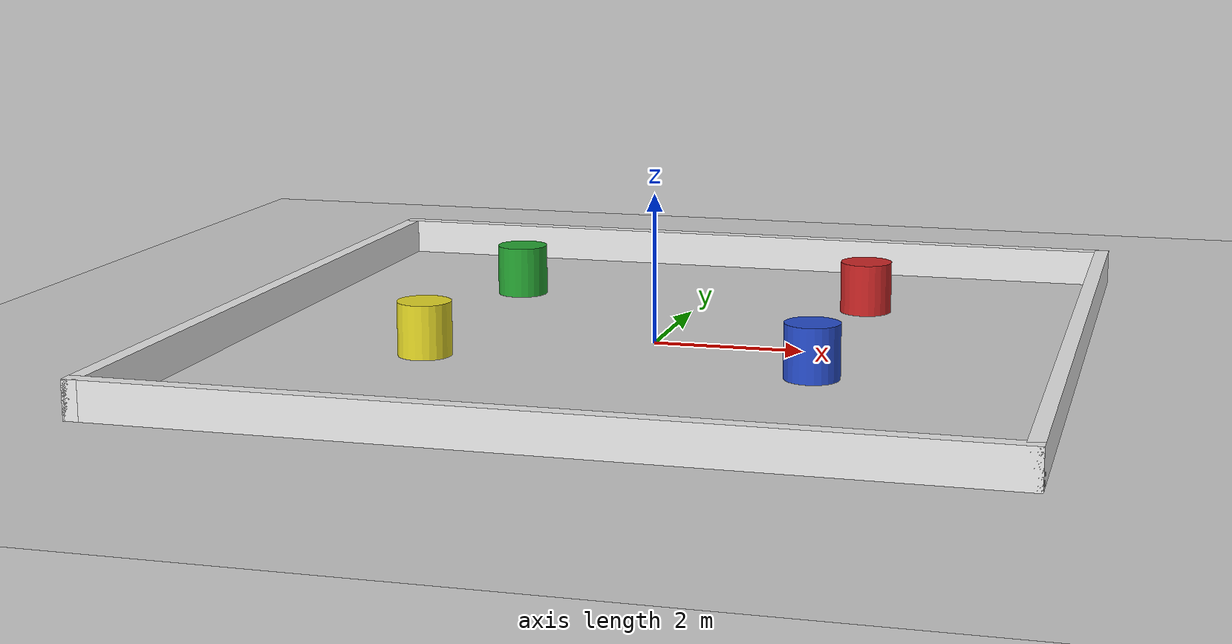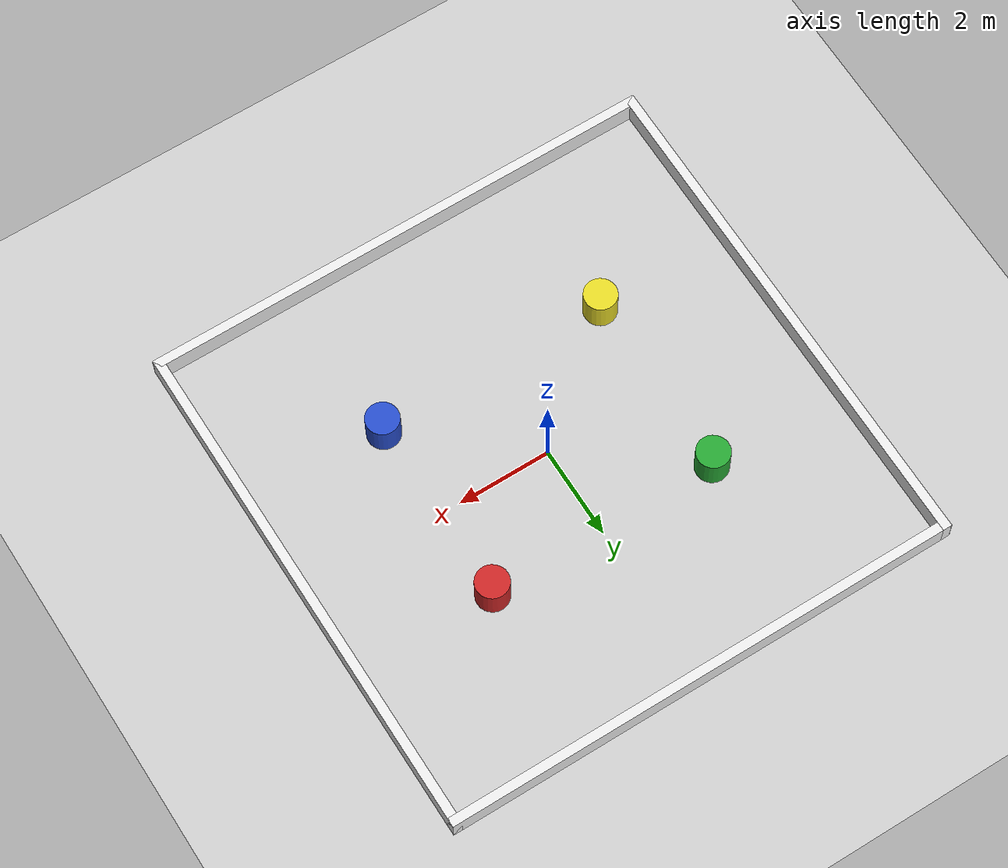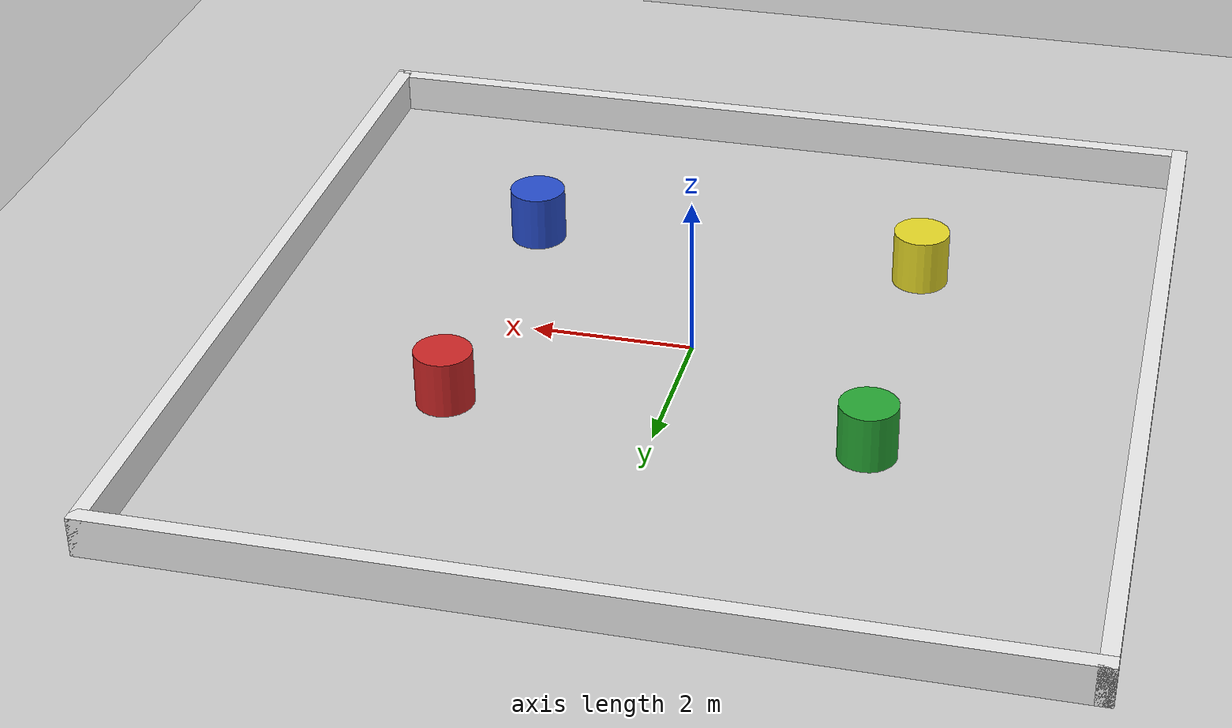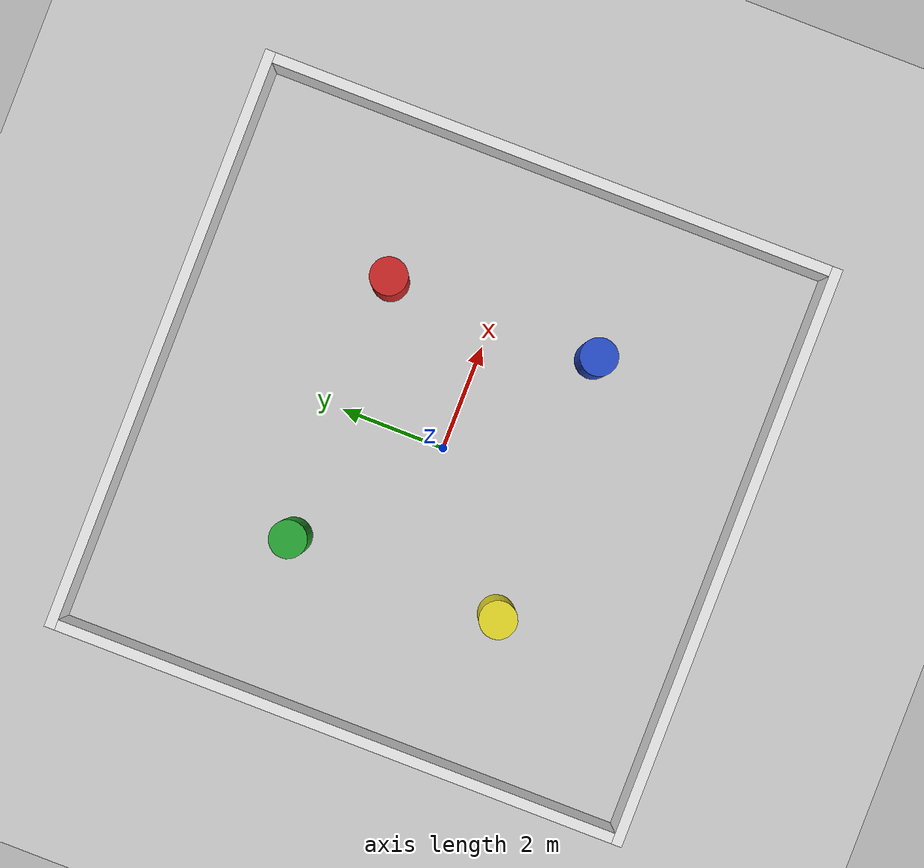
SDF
<?xml version="1.0"?>
<sdf version="1.6">
  <world name="default">

  <plugin name="gazebo_ros_state" filename="libgazebo_ros_state.so">
      <ros>
        <namespace>/gazebo</namespace>
      </ros>
    </plugin>

    <include>
      <uri>model://sun</uri>
    </include>
    <include>
      <uri>model://ground_plane</uri>
    </include>

    <physics type="ode">
      <real_time_update_rate>100</real_time_update_rate>
      <max_step_size>0.01</max_step_size>
      <real_time_factor>0</real_time_factor>
    </physics>

    <model name="wall_top">
      <pose>0 5.5 0.25 0 0 0</pose>
      <static>true</static>
      <link name="link">
        <collision name="col"><geometry><box><size>11.2 0.2 0.5</size></box></geometry></collision>
        <visual name="vis"><geometry><box><size>11.2 0.2 0.5</size></box></geometry><material><script><uri>file://media/materials/scripts/gazebo.material</uri><name>Gazebo/White</name></script></material></visual>
      </link>
    </model>

    <model name="wall_bottom">
      <pose>0 -5.5 0.25 0 0 0</pose>
      <static>true</static>
      <link name="link">
        <collision name="col"><geometry><box><size>11.2 0.2 0.5</size></box></geometry></collision>
        <visual name="vis"><geometry><box><size>11.2 0.2 0.5</size></box></geometry><material><script><uri>file://media/materials/scripts/gazebo.material</uri><name>Gazebo/White</name></script></material></visual>
      </link>
    </model>

    <model name="wall_left">
      <pose>5.5 0 0.25 0 0 0</pose>
      <static>true</static>
      <link name="link">
        <collision name="col"><geometry><box><size>0.2 11.2 0.5</size></box></geometry></collision>
        <visual name="vis"><geometry><box><size>0.2 11.2 0.5</size></box></geometry><material><script><uri>file://media/materials/scripts/gazebo.material</uri><name>Gazebo/White</name></script></material></visual>
      </link>
    </model>

    <model name="wall_right">
      <pose>-5.5 0 0.25 0 0 0</pose>
      <static>true</static>
      <link name="link">
        <collision name="col"><geometry><box><size>0.2 11.2 0.5</size></box></geometry></collision>
        <visual name="vis"><geometry><box><size>0.2 11.2 0.5</size></box></geometry><material><script><uri>file://media/materials/scripts/gazebo.material</uri><name>Gazebo/White</name></script></material></visual>
      </link>
    </model>

    <model name="obs_1">
      <pose>2.5 2.0 0.5 0 0 0</pose>
      <link name="link">
        <kinematic>1</kinematic>
        <gravity>0</gravity>
        <inertial><mass>1.0</mass><inertia><ixx>0.1</ixx><iyy>0.1</iyy><izz>0.1</izz></inertia></inertial>
        <collision name="col"><geometry><cylinder><radius>0.35</radius><length>0.7</length></cylinder></geometry></collision>
        <visual name="vis"><geometry><cylinder><radius>0.35</radius><length>0.7</length></cylinder></geometry><material><script><uri>file://media/materials/scripts/gazebo.material</uri><name>Gazebo/Red</name></script></material></visual>
      </link>
      <plugin name="mover" filename="libgazebo_ros_planar_move.so">
        <ros><namespace>/obs1</namespace></ros>
        <update_rate>100</update_rate><publish_odom>false</publish_odom>
      </plugin>
    </model>

    <model name="obs_2">
      <pose>2.5 -2.0 0.5 0 0 0</pose>
      <link name="link">
        <kinematic>1</kinematic>
        <gravity>0</gravity>
        <inertial><mass>1.0</mass><inertia><ixx>0.1</ixx><iyy>0.1</iyy><izz>0.1</izz></inertia></inertial>
        <collision name="col"><geometry><cylinder><radius>0.35</radius><length>0.7</length></cylinder></geometry></collision>
        <visual name="vis"><geometry><cylinder><radius>0.35</radius><length>0.7</length></cylinder></geometry><material><script><uri>file://media/materials/scripts/gazebo.material</uri><name>Gazebo/Blue</name></script></material></visual>
      </link>
      <plugin name="mover" filename="libgazebo_ros_planar_move.so">
        <ros><namespace>/obs2</namespace></ros>
        <update_rate>100</update_rate><publish_odom>false</publish_odom>
      </plugin>
    </model>

    <model name="obs_3">
      <pose>-2.5 2.0 0.5 0 0 0</pose>
      <link name="link">
        <kinematic>1</kinematic>
        <gravity>0</gravity>
        <inertial><mass>1.0</mass><inertia><ixx>0.1</ixx><iyy>0.1</iyy><izz>0.1</izz></inertia></inertial>
        <collision name="col"><geometry><cylinder><radius>0.35</radius><length>0.7</length></cylinder></geometry></collision>
        <visual name="vis"><geometry><cylinder><radius>0.35</radius><length>0.7</length></cylinder></geometry><material><script><uri>file://media/materials/scripts/gazebo.material</uri><name>Gazebo/Green</name></script></material></visual>
      </link>
      <plugin name="mover" filename="libgazebo_ros_planar_move.so">
        <ros><namespace>/obs3</namespace></ros>
        <update_rate>100</update_rate><publish_odom>false</publish_odom>
      </plugin>
    </model>

    <model name="obs_4">
      <pose>-2.5 -2.0 0.5 0 0 0</pose>
      <link name="link">
        <kinematic>1</kinematic>
        <gravity>0</gravity>
        <inertial><mass>1.0</mass><inertia><ixx>0.1</ixx><iyy>0.1</iyy><izz>0.1</izz></inertia></inertial>
        <collision name="col"><geometry><cylinder><radius>0.35</radius><length>0.7</length></cylinder></geometry></collision>
        <visual name="vis"><geometry><cylinder><radius>0.35</radius><length>0.7</length></cylinder></geometry><material><script><uri>file://media/materials/scripts/gazebo.material</uri><name>Gazebo/Yellow</name></script></material></visual>
      </link>
      <plugin name="mover" filename="libgazebo_ros_planar_move.so">
        <ros><namespace>/obs4</namespace></ros>
        <update_rate>100</update_rate><publish_odom>false</publish_odom>
      </plugin>
    </model>

  </world>
</sdf>
